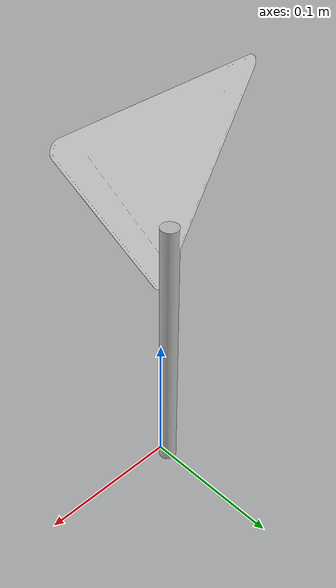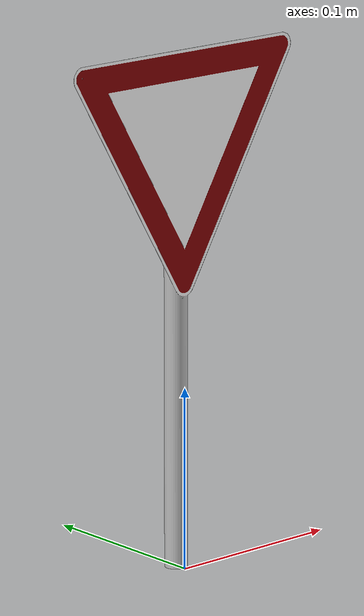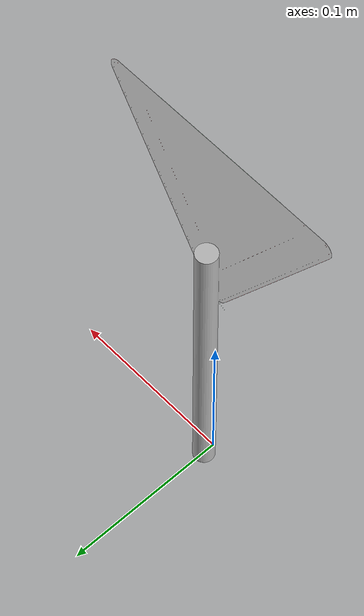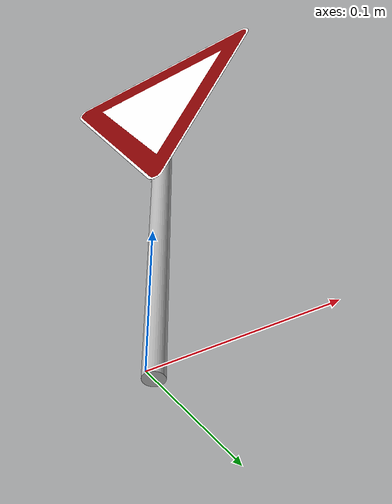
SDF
<?xml version="1.0"?>
<sdf version="1.5">
    <model name="Give_way">
      <pose>0 0 0  0 0 0</pose>
      <static>true</static>
      <link name="body">
        <visual name="visual">
          <geometry>
            <mesh>
	      <uri>model://meshes/Give_way.dae</uri>
	      <scale>1 1 1</scale>
	    </mesh>
          </geometry>
        </visual>
      </link>
    </model>
</sdf>
